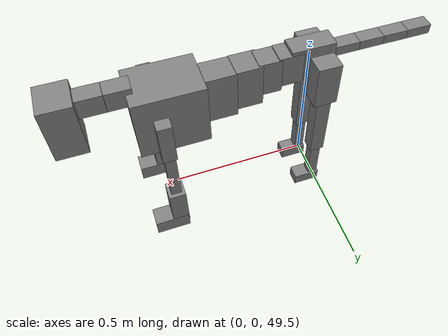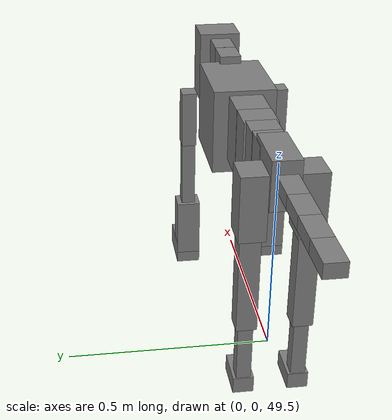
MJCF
<mujoco model="dog">

    <default>
        <joint armature="0.02" stiffness="1" damping="0.2" limited="true"/>
        <geom condim="3" friction="1 0.05 0.05" margin="0.01"/>
        <motor ctrllimited="true" ctrlrange="-1.0 1.0" forcelimited="true" gear="50"/>
    </default>

    <compiler inertiafromgeom="true" angle="radian"/>

    <option timestep="0.016" iterations="50" tolerance="1e-10" solver="Newton" jacobian="dense" cone="pyramidal"/>

    <size nconmax="20000" njmax="60000" nstack="5000000"/>
    <visual>
        <map force="0.1" zfar="30"/>
        <rgba haze="0.15 0.25 0.35 1"/>
        <quality shadowsize="2048"/>
        <global offwidth="800" offheight="800"/>
    </visual>

    <asset>
        <texture type="skybox" builtin="gradient" rgb1="0.3 0.5 0.7" rgb2="0 0 0" width="512" height="512"/>
        <texture name="texplane" type="2d" builtin="checker" rgb1=".2 .3 .4" rgb2=".1 0.15 0.2" width="512" height="512"
                 mark="cross" markrgb=".8 .8 .8"/>
        <texture name="texgeom" type="cube" builtin="flat" mark="cross" width="127" height="1278" rgb1="0.8 0.6 0.4"
                 rgb2="0.8 0.6 0.4" markrgb="1 1 1" random="0.01"/>

        <material name="matplane" reflectance="0.3" texture="texplane" texrepeat="1 1" texuniform="true"/>
        <material name="matgeom" texture="texgeom" texuniform="true" rgba="0.8 0.6 .4 1"/>
    </asset>

    <worldbody>
        <geom name="floor" pos="0 0 0" size="0 0 .25" type="plane" material="matplane" condim="3"/>

        <light directional="false" diffuse=".2 .2 .2" specular="0 0 0" pos="0 0 5" dir="0 0 -1" castshadow="false"/>
        <light mode="targetbodycom" target="torso" directional="false" diffuse=".8 .8 .8" specular="0.3 0.3 0.3"
               pos="0 0 4.0" dir="0 0 -1"/>

        <body name="root" pos="0 0 50">
            <freejoint name="root_1"/>
            <geom type="box" pos="0 0 -0.02" size="0.0774  0.0358  0.063" density="2030"/>

            <body name="spine1" pos="0.054 0 0">
                <joint name="spine1_y" axis="0 1 0" range="0 0.7" limited="true"/>
                <geom type="box" pos="0.02375 0 -0.03" size="0.04375  0.0375  0.05985" density="2030"/>

                <body name="spine2" pos="0.0612 0 0">
                    <joint name="spine2_y" axis="0 1 0" range="-0.15 0.15" limited="true"/>
                    <geom type="box" pos="0.03555  0  -0.04" size="0.04055  0.039  0.06615" density="2030"/>

                    <body name="spine3" pos="0.0730 0 0">
                        <joint name="spine3_y" axis="0 1 0" range="-0.15 0.15" limited="true"/>
                        <geom type="box" pos="0.03555  0  -0.057" size="0.04555  0.0445  0.081" density="2030"/>

                        <body name="spine4" pos="0.0780 0 0">
                            <joint name="spine4_y" axis="0 1 0" range="-0.15 0.15" limited="true"/>
                            <geom type="box" pos="0.05265  0  -0.07" size="0.05265  0.045  0.09135" density="2030"/>

                            <body name="torso" pos="0.1082 0 0">
                                <joint name="torso_y" axis="0 1 0" range="-0.15 0.15" limited="true"/>
                                <geom type="box" pos="0.11925  0  -0.085" size="0.11925  0.085  0.11745"
                                      density="2030"/>

                                <body name="neck1" pos="0.2160  0   0.0180">
                                    <joint name="neck1_y" axis="0 1 0" range="-1.2  -1" limited="true"/>
                                    <geom type="box" pos="0.0423  0  0" size="0.0423  0.03  0.036" density="2325"/>

                                    <body name="neck2" pos="0.0853  0  0">
                                        <joint name="neck2_y" axis="0 1 0" range="0.1  0" limited="true"/>
                                        <geom type="box" pos="0.0423  0  0" size="0.0423  0.03  0.036" density="2325"/>

                                        <body name="head" pos="0.0853  0  0">
                                            <joint name="head_y" axis="0 1 0" range="-0.3  -0.2" limited="true"/>
                                            <geom type="box" pos="0.0531  0  -0.055" size="0.0531  0.06  0.1044"
                                                  density="4030"/>

                                        </body>
                                    </body>
                                </body>

                                <body name="front_shoulder" pos="0.156  0   -0.0480">
                                    <joint name="front_shoulder_y" axis="0 1 0" range="-1 1.5" limited="true"/>
                                    <geom type="box" pos="0 0.13 -0.0519" size="0.0241  0.0206  0.0786" density="1158"/>
                                    <geom type="box" pos="0 -0.13 -0.0519" size="0.0241  0.0206  0.0786"
                                          density="1158"/>

                                    <body name="front_elbow" pos="0  0  -0.1039">
                                        <joint name="front_elbow_y" axis="0 1 0" range="-2 0" limited="true"/>
                                        <geom type="box" pos="0 0.13 -0.1137" size="0.0184  0.0188  0.1137"
                                              density="1081"/>
                                        <geom type="box" pos="0 -0.13 -0.1137" size="0.0184  0.0188  0.1137"
                                              density="1081"/>

                                        <body name="front_wrist" pos="0  0  -0.2275">
                                            <joint name="front_wrist_y" axis="0 1 0" range="-0.2 0" limited="true"/>
                                            <geom type="box" pos="0 0.13 -0.0691" size="0.0296  0.0329  0.0822"
                                                  density="1664"/>
                                            <geom type="box" pos="0 -0.13 -0.0691" size="0.0296  0.0329  0.0822"
                                                  density="1664"/>

                                            <body name="front_finger_end" pos="0  0  -0.1382">
                                                <joint name="front_finger_y" axis="0 1 0" range="-0.4 1"
                                                       limited="true"/>
                                                <geom type="box" pos="0.0332  0.13  -0.0157"
                                                      size="0.0609  0.0332  0.0307" density="1515"/>
                                                <geom type="box" pos="0.0332  -0.13  -0.0157"
                                                      size="0.0609  0.0332  0.0307" density="1515"/>

                                            </body>

                                        </body>
                                    </body>
                                </body>

                            </body>
                        </body>
                    </body>
                </body>
            </body>

            <body name="back_hip" pos="-0.03 0 -0.018">
                <joint name="back_hip_y" axis="0 1 0" range="-1.5 0.3" limited="true"/>
                <geom type="box" pos="0 0.07 -0.0610" size="0.0421  0.0330  0.0838" density="1154"/>
                <geom type="box" pos="0 -0.07 -0.0610" size="0.0421  0.0330  0.0838" density="1154"/>

                <body name="back_knee" pos="0  0  -0.1219">
                    <joint name="back_knee_y" axis="0 1 0" range="0 2.8" limited="true"/>
                    <geom type="box" pos="0 0.07 -0.1321" size="0.0264  0.0260  0.1477" density="1227"/>
                    <geom type="box" pos="0 -0.07 -0.1321" size="0.0264  0.0260  0.1477" density="1227"/>

                    <body name="back_ankle" pos="0  0  -0.2642">
                        <joint name="back_ankle_y" axis="0 1 0" range="-2.2 0" limited="true"/>
                        <geom type="box" pos="0 0.07 -0.0906" size="0.0188  0.0188  0.1019" density="1284"/>
                        <geom type="box" pos="0 -0.07 -0.0906" size="0.0188  0.0188  0.1019" density="1284"/>

                        <body name="back_toe_end" pos="0  0  -0.1812">
                            <joint name="back_toe_y" axis="0 1 0" range="-0.4 1" limited="true"/>
                            <geom type="box" pos="0.0264  0.07  -0.0069" size="0.0485  0.0264  0.0219" density="1515"/>
                            <geom type="box" pos="0.0264  -0.07  -0.0069" size="0.0485  0.0264  0.0219" density="1515"/>

                        </body>
                    </body>
                </body>
            </body>

            <body name="tail1" pos="-0.074 0 -0.006">
                <joint name="tail1_y" axis="0 1 0" range="-0.2 0.2" limited="true"/>
                <geom type="box" pos="-0.0536  0  0" size="0.045  0.025  0.0175" density="1587"/>

                <body name="tail2" pos="-0.09 0 0">
                    <joint name="tail2_y" axis="0 1 0" range="-0.2 0.2" limited="true"/>
                    <geom type="box" pos="-0.0536  0  0" size="0.045  0.025  0.0175" density="1587"/>

                    <body name="tail3" pos="-0.09 0 0">
                        <joint name="tail3_y" axis="0 1 0" range="-0.2 0.2" limited="true"/>
                        <geom type="box" pos="-0.0536  0  0" size="0.045  0.025  0.0175" density="1587"/>

                        <body name="tail4" pos="-0.09 0 0">
                            <joint name="tail4_y" axis="0 1 0" range="-0.2 0.2" limited="true"/>
                            <geom type="box" pos="-0.0536  0  0" size="0.045  0.025  0.0175" density="1587"/>

                        </body>
                    </body>
                </body>
            </body>
        </body>
    </worldbody>

    <actuator>
        <motor joint="spine1_y" forcerange="-150 150     "/>
        <motor joint="spine2_y" forcerange="-150 150     "/>
        <motor joint="spine3_y" forcerange="-150 150     "/>
        <motor joint="spine4_y" forcerange="-150 150     "/>
        <motor joint="torso_y" forcerange="-150 150     "/>
        <motor joint="neck1_y" forcerange="-100 100       "/>
        <motor joint="neck2_y" forcerange="-100 100       "/>
        <motor joint="head_y" forcerange="-150 150       "/>
        <motor joint="front_shoulder_y" forcerange="-127.45 109.59"/>
        <motor joint="front_elbow_y" forcerange="-105.59 131.09"/>
        <motor joint="front_wrist_y" forcerange="-135.98 126.95"/>
        <motor joint="front_finger_y" forcerange="-60.67 76.43"/>
        <motor joint="back_hip_y" forcerange="-291.80 348.00"/>
        <motor joint="back_knee_y" forcerange="-344.21 233.95"/>
        <motor joint="back_angle_y" forcerange="-147.42 53.68"/>
        <motor joint="back_toe_y" forcerange="-62.13 69.35"/>
        <motor joint="tail1_y" forcerange="-50 50     "/>
        <motor joint="tail2_y" forcerange="-50 50     "/>
        <motor joint="tail3_y" forcerange="-50 50     "/>
        <motor joint="tail4_y" forcerange="-50 50     "/>
    </actuator>
</mujoco>
